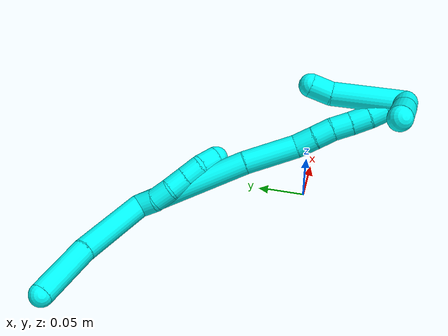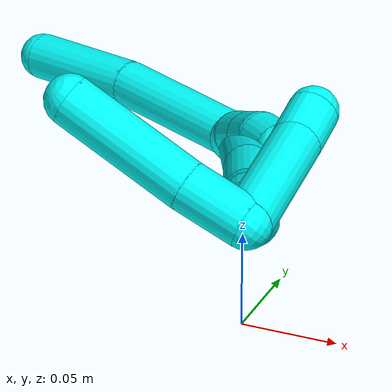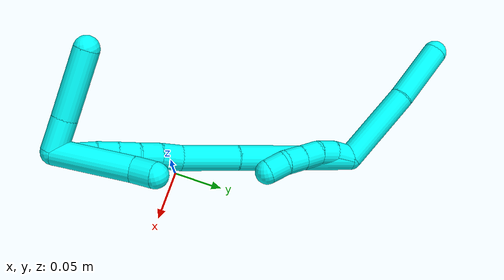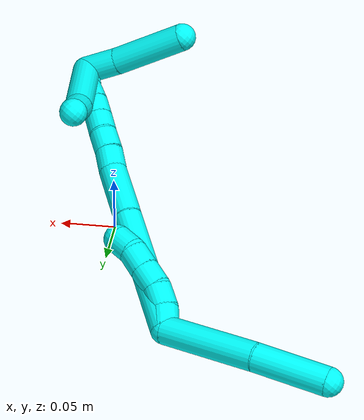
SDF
<sdf version="1.7">
 <world name="default">
  <model name="photoneo_s_sensor">
   <static>1</static>
   <pose>0 0 2 1.57079 1.57079 3.14159</pose>
   <link name="link">
    <inertial><mass>0.1</mass></inertial>
    <sensor name="sensor" type="depth">
     <update_rate>30</update_rate>
     <camera>
      <horizontal_fov>1.22</horizontal_fov>
      <image><width>1920</width><height>1200</height><format>B8G8R8</format></image>
      <clip><near>0.1</near><far>4</far></clip>
      <depth_camera><output>points</output></depth_camera>
     </camera>
     <plugin name="camera_plugin" filename="libgazebo_ros_depth_camera.so">
      <baseline>0.2</baseline>
      <alwaysOn>1</alwaysOn>
      <updateRate>0.0</updateRate>
      <cameraName>camera_ir</cameraName>
      <imageTopicName>/camera/color/image_raw</imageTopicName>
      <cameraInfoTopicName>/camera/color/camera_info</cameraInfoTopicName>
      <depthImageTopicName>/camera/depth/image_raw</depthImageTopicName>
      <depthImageCameraInfoTopicName>/camera/depth/camera_info</depthImageCameraInfoTopicName>
      <pointCloudTopicName>/camera/depth/points</pointCloudTopicName>
      <frameName>fr_optical</frameName>
      <pointCloudCutoff>0.1</pointCloudCutoff>
      <pointCloudCutoffMax>2.0</pointCloudCutoffMax>
      <distortionK1>0</distortionK1>
      <distortionK2>0</distortionK2>
      <distortionK3>0</distortionK3>
      <distortionT1>0</distortionT1>
      <distortionT2>0</distortionT2>
      <CxPrime>0</CxPrime>
      <Cx>0</Cx>
      <Cy>0</Cy>
      <focalLength>0</focalLength>
      <hackBaseline>0</hackBaseline>
     </plugin>
    </sensor>
   </link>
  </model>
  <model name="bin">
   <static>1</static>
   <link name="bottom">
    <collision name="collision-bottom">
     <pose>0 0 -0.01 0 -0 0</pose>
     <geometry><box><size>0.8 0.6 0.02</size></box></geometry>
     <surface>
      <friction><ode><mu>100</mu><mu2>100</mu2></ode></friction>
      <contact><collide_bitmask>65535</collide_bitmask></contact>
     </surface>
    </collision>
   </link>
   <link name="west_wall">
    <collision name="collision-west_wall">
     <pose>-0.41 0 0.1 0 -0 0</pose>
     <geometry><box><size>0.02 0.6 0.2</size></box></geometry>
     <surface>
      <friction><ode><mu>100</mu><mu2>100</mu2></ode></friction>
      <contact><collide_bitmask>65535</collide_bitmask></contact>
     </surface>
    </collision>
   </link>
   <link name="east_wall">
    <collision name="collision-east_wall">
     <pose>0.41 0 0.1 0 -0 0</pose>
     <geometry><box><size>0.02 0.6 0.2</size></box></geometry>
     <surface>
      <friction><ode><mu>100</mu><mu2>100</mu2></ode></friction>
      <contact><collide_bitmask>65535</collide_bitmask></contact>
     </surface>
    </collision>
   </link>
   <link name="south_wall">
    <collision name="collision-south_wall">
     <pose>0 -0.31 0.1 0 -0 0</pose>
     <geometry><box><size>0.8 0.02 0.2</size></box></geometry>
     <surface>
      <friction><ode><mu>100</mu><mu2>100</mu2></ode></friction>
      <contact><collide_bitmask>65535</collide_bitmask></contact>
     </surface>
    </collision>
   </link>
   <link name="north_wall">
    <collision name="collision-north_wall">
     <pose>0 0.31 0.1 0 -0 0</pose>
     <geometry><box><size>0.8 0.02 0.2</size></box></geometry>
     <surface>
      <friction><ode><mu>100</mu><mu2>100</mu2></ode></friction>
      <contact><collide_bitmask>65535</collide_bitmask></contact>
     </surface>
    </collision>
   </link>
  </model>
  <model name="3">
   <static>0</static>
   <link name="3">
    <collision name="collision-cylinder-e_1_2_8">
     <pose>-0.017783 0.034406 0.018047 -1.08771 -0.429241 0.262103</pose>
     <geometry><cylinder><radius>0.0125</radius><length>0.085457</length></cylinder></geometry>
     <surface>
      <friction><ode><mu>1.16</mu><mu2>1.16</mu2><slip1>0</slip1><slip2>0</slip2></ode></friction>
      <contact><ode><kp>1e+06</kp><kd>1</kd><max_vel>0</max_vel><min_depth>0.001</min_depth></ode></contact>
     </surface>
    </collision>
    <visual name="visual-cylinder-e_1_2_8">
     <pose>-0.017783 0.034406 0.018047 -1.08771 -0.429241 0.262103</pose>
     <geometry><cylinder><radius>0.0125</radius><length>0.085457</length></cylinder></geometry>
     <material><ambient>0.003922 1 0.996078 1</ambient></material>
    </visual>
    <collision name="collision-cylinder-e_2_8_6">
     <pose>-0.052398 0.093149 0.048973 -1.08408 -0.548704 0.335791</pose>
     <geometry><cylinder><radius>0.0125</radius><length>0.064543</length></cylinder></geometry>
     <surface>
      <friction><ode><mu>1.16</mu><mu2>1.16</mu2><slip1>0</slip1><slip2>0</slip2></ode></friction>
      <contact><ode><kp>1e+06</kp><kd>1</kd><max_vel>0</max_vel><min_depth>0.001</min_depth></ode></contact>
     </surface>
    </collision>
    <visual name="visual-cylinder-e_2_8_6">
     <pose>-0.052398 0.093149 0.048973 -1.08408 -0.548704 0.335791</pose>
     <geometry><cylinder><radius>0.0125</radius><length>0.064543</length></cylinder></geometry>
     <material><ambient>0.003922 1 0.996078 1</ambient></material>
    </visual>
    <collision name="collision-cylinder-e_1_2_9">
     <pose>0.001567 -0.008011 0.005777 0.946041 0.157331 0.08064</pose>
     <geometry><cylinder><radius>0.0125</radius><length>0.02</length></cylinder></geometry>
     <surface>
      <friction><ode><mu>1.16</mu><mu2>1.16</mu2><slip1>0</slip1><slip2>0</slip2></ode></friction>
      <contact><ode><kp>1e+06</kp><kd>1</kd><max_vel>0</max_vel><min_depth>0.001</min_depth></ode></contact>
     </surface>
    </collision>
    <visual name="visual-cylinder-e_1_2_9">
     <pose>0.001567 -0.008011 0.005777 0.946041 0.157331 0.08064</pose>
     <geometry><cylinder><radius>0.0125</radius><length>0.02</length></cylinder></geometry>
     <material><ambient>0.003922 1 0.996078 1</ambient></material>
    </visual>
    <collision name="collision-cylinder-e_2_9_10">
     <pose>0.007246 -0.024081 0.015813 1.08459 0.423768 0.257798</pose>
     <geometry><cylinder><radius>0.0125</radius><length>0.02</length></cylinder></geometry>
     <surface>
      <friction><ode><mu>1.16</mu><mu2>1.16</mu2><slip1>0</slip1><slip2>0</slip2></ode></friction>
      <contact><ode><kp>1e+06</kp><kd>1</kd><max_vel>0</max_vel><min_depth>0.001</min_depth></ode></contact>
     </surface>
    </collision>
    <visual name="visual-cylinder-e_2_9_10">
     <pose>0.007246 -0.024081 0.015813 1.08459 0.423768 0.257798</pose>
     <geometry><cylinder><radius>0.0125</radius><length>0.02</length></cylinder></geometry>
     <material><ambient>0.003922 1 0.996078 1</ambient></material>
    </visual>
    <collision name="collision-cylinder-e_3_10_11">
     <pose>0.016045 -0.040756 0.022019 1.34856 0.48787 0.392724</pose>
     <geometry><cylinder><radius>0.0125</radius><length>0.02</length></cylinder></geometry>
     <surface>
      <friction><ode><mu>1.16</mu><mu2>1.16</mu2><slip1>0</slip1><slip2>0</slip2></ode></friction>
      <contact><ode><kp>1e+06</kp><kd>1</kd><max_vel>0</max_vel><min_depth>0.001</min_depth></ode></contact>
     </surface>
    </collision>
    <visual name="visual-cylinder-e_3_10_11">
     <pose>0.016045 -0.040756 0.022019 1.34856 0.48787 0.392724</pose>
     <geometry><cylinder><radius>0.0125</radius><length>0.02</length></cylinder></geometry>
     <material><ambient>0.003922 1 0.996078 1</ambient></material>
    </visual>
    <collision name="collision-cylinder-e_4_11_12">
     <pose>0.025417 -0.05796 0.026042 1.33365 0.487587 0.386678</pose>
     <geometry><cylinder><radius>0.0125</radius><length>0.02</length></cylinder></geometry>
     <surface>
      <friction><ode><mu>1.16</mu><mu2>1.16</mu2><slip1>0</slip1><slip2>0</slip2></ode></friction>
      <contact><ode><kp>1e+06</kp><kd>1</kd><max_vel>0</max_vel><min_depth>0.001</min_depth></ode></contact>
     </surface>
    </collision>
    <visual name="visual-cylinder-e_4_11_12">
     <pose>0.025417 -0.05796 0.026042 1.33365 0.487587 0.386678</pose>
     <geometry><cylinder><radius>0.0125</radius><length>0.02</length></cylinder></geometry>
     <material><ambient>0.003922 1 0.996078 1</ambient></material>
    </visual>
    <collision name="collision-cylinder-e_5_12_5">
     <pose>0.03338 -0.075958 0.02729 1.65844 0.333976 0.363963</pose>
     <geometry><cylinder><radius>0.0125</radius><length>0.02</length></cylinder></geometry>
     <surface>
      <friction><ode><mu>1.16</mu><mu2>1.16</mu2><slip1>0</slip1><slip2>0</slip2></ode></friction>
      <contact><ode><kp>1e+06</kp><kd>1</kd><max_vel>0</max_vel><min_depth>0.001</min_depth></ode></contact>
     </surface>
    </collision>
    <visual name="visual-cylinder-e_5_12_5">
     <pose>0.03338 -0.075958 0.02729 1.65844 0.333976 0.363963</pose>
     <geometry><cylinder><radius>0.0125</radius><length>0.02</length></cylinder></geometry>
     <material><ambient>0.003922 1 0.996078 1</ambient></material>
    </visual>
    <collision name="collision-cylinder-e_1_2_13">
     <pose>0.012967 -0.055314 0.02168 1.19726 0.214893 0.146887</pose>
     <geometry><cylinder><radius>0.0125</radius><length>0.121619</length></cylinder></geometry>
     <surface>
      <friction><ode><mu>1.16</mu><mu2>1.16</mu2><slip1>0</slip1><slip2>0</slip2></ode></friction>
      <contact><ode><kp>1e+06</kp><kd>1</kd><max_vel>0</max_vel><min_depth>0.001</min_depth></ode></contact>
     </surface>
    </collision>
    <visual name="visual-cylinder-e_1_2_13">
     <pose>0.012967 -0.055314 0.02168 1.19726 0.214893 0.146887</pose>
     <geometry><cylinder><radius>0.0125</radius><length>0.121619</length></cylinder></geometry>
     <material><ambient>0.003922 1 0.996078 1</ambient></material>
    </visual>
    <collision name="collision-cylinder-e_2_13_14">
     <pose>0.029763 -0.137119 0.052564 1.23638 0.135686 0.096571</pose>
     <geometry><cylinder><radius>0.0125</radius><length>0.056608</length></cylinder></geometry>
     <surface>
      <friction><ode><mu>1.16</mu><mu2>1.16</mu2><slip1>0</slip1><slip2>0</slip2></ode></friction>
      <contact><ode><kp>1e+06</kp><kd>1</kd><max_vel>0</max_vel><min_depth>0.001</min_depth></ode></contact>
     </surface>
    </collision>
    <visual name="visual-cylinder-e_2_13_14">
     <pose>0.029763 -0.137119 0.052564 1.23638 0.135686 0.096571</pose>
     <geometry><cylinder><radius>0.0125</radius><length>0.056608</length></cylinder></geometry>
     <material><ambient>0.003922 1 0.996078 1</ambient></material>
    </visual>
    <collision name="collision-cylinder-e_3_14_15">
     <pose>0.03623 -0.17266 0.066798 1.06355 0.249481 0.147269</pose>
     <geometry><cylinder><radius>0.0125</radius><length>0.021372</length></cylinder></geometry>
     <surface>
      <friction><ode><mu>1.16</mu><mu2>1.16</mu2><slip1>0</slip1><slip2>0</slip2></ode></friction>
      <contact><ode><kp>1e+06</kp><kd>1</kd><max_vel>0</max_vel><min_depth>0.001</min_depth></ode></contact>
     </surface>
    </collision>
    <visual name="visual-cylinder-e_3_14_15">
     <pose>0.03623 -0.17266 0.066798 1.06355 0.249481 0.147269</pose>
     <geometry><cylinder><radius>0.0125</radius><length>0.021372</length></cylinder></geometry>
     <material><ambient>0.003922 1 0.996078 1</ambient></material>
    </visual>
    <collision name="collision-cylinder-e_4_15_16">
     <pose>0.041602 -0.190712 0.075768 1.15817 0.271369 0.178063</pose>
     <geometry><cylinder><radius>0.0125</radius><length>0.020396</length></cylinder></geometry>
     <surface>
      <friction><ode><mu>1.16</mu><mu2>1.16</mu2><slip1>0</slip1><slip2>0</slip2></ode></friction>
      <contact><ode><kp>1e+06</kp><kd>1</kd><max_vel>0</max_vel><min_depth>0.001</min_depth></ode></contact>
     </surface>
    </collision>
    <visual name="visual-cylinder-e_4_15_16">
     <pose>0.041602 -0.190712 0.075768 1.15817 0.271369 0.178063</pose>
     <geometry><cylinder><radius>0.0125</radius><length>0.020396</length></cylinder></geometry>
     <material><ambient>0.003922 1 0.996078 1</ambient></material>
    </visual>
    <collision name="collision-cylinder-e_5_16_17">
     <pose>0.045609 -0.208977 0.083254 1.2053 0.127655 0.087894</pose>
     <geometry><cylinder><radius>0.0125</radius><length>0.020003</length></cylinder></geometry>
     <surface>
      <friction><ode><mu>1.16</mu><mu2>1.16</mu2><slip1>0</slip1><slip2>0</slip2></ode></friction>
      <contact><ode><kp>1e+06</kp><kd>1</kd><max_vel>0</max_vel><min_depth>0.001</min_depth></ode></contact>
     </surface>
    </collision>
    <visual name="visual-cylinder-e_5_16_17">
     <pose>0.045609 -0.208977 0.083254 1.2053 0.127655 0.087894</pose>
     <geometry><cylinder><radius>0.0125</radius><length>0.020003</length></cylinder></geometry>
     <material><ambient>0.003922 1 0.996078 1</ambient></material>
    </visual>
    <collision name="collision-cylinder-e_6_17_18">
     <pose>0.048553 -0.227422 0.090398 1.19718 0.167872 0.114644</pose>
     <geometry><cylinder><radius>0.0125</radius><length>0.020001</length></cylinder></geometry>
     <surface>
      <friction><ode><mu>1.16</mu><mu2>1.16</mu2><slip1>0</slip1><slip2>0</slip2></ode></friction>
      <contact><ode><kp>1e+06</kp><kd>1</kd><max_vel>0</max_vel><min_depth>0.001</min_depth></ode></contact>
     </surface>
    </collision>
    <visual name="visual-cylinder-e_6_17_18">
     <pose>0.048553 -0.227422 0.090398 1.19718 0.167872 0.114644</pose>
     <geometry><cylinder><radius>0.0125</radius><length>0.020001</length></cylinder></geometry>
     <material><ambient>0.003922 1 0.996078 1</ambient></material>
    </visual>
    <collision name="collision-cylinder-e_7_18_19">
     <pose>0.052743 -0.245803 0.096996 1.25576 0.254601 0.185281</pose>
     <geometry><cylinder><radius>0.0125</radius><length>0.02</length></cylinder></geometry>
     <surface>
      <friction><ode><mu>1.16</mu><mu2>1.16</mu2><slip1>0</slip1><slip2>0</slip2></ode></friction>
      <contact><ode><kp>1e+06</kp><kd>1</kd><max_vel>0</max_vel><min_depth>0.001</min_depth></ode></contact>
     </surface>
    </collision>
    <visual name="visual-cylinder-e_7_18_19">
     <pose>0.052743 -0.245803 0.096996 1.25576 0.254601 0.185281</pose>
     <geometry><cylinder><radius>0.0125</radius><length>0.02</length></cylinder></geometry>
     <material><ambient>0.003922 1 0.996078 1</ambient></material>
    </visual>
    <collision name="collision-cylinder-e_8_19_1">
     <pose>0.056571 -0.263394 0.105277 1.00883 0.131315 0.072565</pose>
     <geometry><cylinder><radius>0.0125</radius><length>0.020001</length></cylinder></geometry>
     <surface>
      <friction><ode><mu>1.16</mu><mu2>1.16</mu2><slip1>0</slip1><slip2>0</slip2></ode></friction>
      <contact><ode><kp>1e+06</kp><kd>1</kd><max_vel>0</max_vel><min_depth>0.001</min_depth></ode></contact>
     </surface>
    </collision>
    <visual name="visual-cylinder-e_8_19_1">
     <pose>0.056571 -0.263394 0.105277 1.00883 0.131315 0.072565</pose>
     <geometry><cylinder><radius>0.0125</radius><length>0.020001</length></cylinder></geometry>
     <material><ambient>0.003922 1 0.996078 1</ambient></material>
    </visual>
    <collision name="collision-cylinder-e_1_1_20">
     <pose>0.053466 -0.263006 0.123513 -0.595497 -0.274968 0.084864</pose>
     <geometry><cylinder><radius>0.0125</radius><length>0.032515</length></cylinder></geometry>
     <surface>
      <friction><ode><mu>1.16</mu><mu2>1.16</mu2><slip1>0</slip1><slip2>0</slip2></ode></friction>
      <contact><ode><kp>1e+06</kp><kd>1</kd><max_vel>0</max_vel><min_depth>0.001</min_depth></ode></contact>
     </surface>
    </collision>
    <visual name="visual-cylinder-e_1_1_20">
     <pose>0.053466 -0.263006 0.123513 -0.595497 -0.274968 0.084864</pose>
     <geometry><cylinder><radius>0.0125</radius><length>0.032515</length></cylinder></geometry>
     <material><ambient>0.003922 1 0.996078 1</ambient></material>
    </visual>
    <collision name="collision-cylinder-e_2_20_4">
     <pose>0.042451 -0.236 0.164083 -0.583462 -0.196896 0.059302</pose>
     <geometry><cylinder><radius>0.0125</radius><length>0.067485</length></cylinder></geometry>
     <surface>
      <friction><ode><mu>1.16</mu><mu2>1.16</mu2><slip1>0</slip1><slip2>0</slip2></ode></friction>
      <contact><ode><kp>1e+06</kp><kd>1</kd><max_vel>0</max_vel><min_depth>0.001</min_depth></ode></contact>
     </surface>
    </collision>
    <visual name="visual-cylinder-e_2_20_4">
     <pose>0.042451 -0.236 0.164083 -0.583462 -0.196896 0.059302</pose>
     <geometry><cylinder><radius>0.0125</radius><length>0.067485</length></cylinder></geometry>
     <material><ambient>0.003922 1 0.996078 1</ambient></material>
    </visual>
    <collision name="collision-cylinder-e_1_1_21">
     <pose>0.069353 -0.237261 0.097793 -1.92501 0.302156 -0.430457</pose>
     <geometry><cylinder><radius>0.0125</radius><length>0.077106</length></cylinder></geometry>
     <surface>
      <friction><ode><mu>1.16</mu><mu2>1.16</mu2><slip1>0</slip1><slip2>0</slip2></ode></friction>
      <contact><ode><kp>1e+06</kp><kd>1</kd><max_vel>0</max_vel><min_depth>0.001</min_depth></ode></contact>
     </surface>
    </collision>
    <visual name="visual-cylinder-e_1_1_21">
     <pose>0.069353 -0.237261 0.097793 -1.92501 0.302156 -0.430457</pose>
     <geometry><cylinder><radius>0.0125</radius><length>0.077106</length></cylinder></geometry>
     <material><ambient>0.003922 1 0.996078 1</ambient></material>
    </visual>
    <collision name="collision-cylinder-e_2_21_3">
     <pose>0.086849 -0.193297 0.082666 -1.8158 0.55414 -0.698612</pose>
     <geometry><cylinder><radius>0.0125</radius><length>0.022894</length></cylinder></geometry>
     <surface>
      <friction><ode><mu>1.16</mu><mu2>1.16</mu2><slip1>0</slip1><slip2>0</slip2></ode></friction>
      <contact><ode><kp>1e+06</kp><kd>1</kd><max_vel>0</max_vel><min_depth>0.001</min_depth></ode></contact>
     </surface>
    </collision>
    <visual name="visual-cylinder-e_2_21_3">
     <pose>0.086849 -0.193297 0.082666 -1.8158 0.55414 -0.698612</pose>
     <geometry><cylinder><radius>0.0125</radius><length>0.022894</length></cylinder></geometry>
     <material><ambient>0.003922 1 0.996078 1</ambient></material>
    </visual>
    <collision name="collision-sphere-3">
     <pose>0.092872 -0.183853 0.080304 0 -0 0</pose>
     <geometry><sphere><radius>0.0125</radius></sphere></geometry>
     <surface>
      <friction><ode><mu>1.16</mu><mu2>1.16</mu2><slip1>0</slip1><slip2>0</slip2></ode></friction>
      <contact><ode><kp>1e+06</kp><kd>1</kd><max_vel>0</max_vel><min_depth>0.001</min_depth></ode></contact>
     </surface>
    </collision>
    <visual name="visual-sphere-3">
     <pose>0.092872 -0.183853 0.080304 0 -0 0</pose>
     <geometry><sphere><radius>0.0125</radius></sphere></geometry>
     <material><ambient>0.003922 1 0.996078 1</ambient></material>
    </visual>
    <collision name="collision-sphere-21">
     <pose>0.080826 -0.20274 0.085027 0 -0 0</pose>
     <geometry><sphere><radius>0.0125</radius></sphere></geometry>
     <surface>
      <friction><ode><mu>1.16</mu><mu2>1.16</mu2><slip1>0</slip1><slip2>0</slip2></ode></friction>
      <contact><ode><kp>1e+06</kp><kd>1</kd><max_vel>0</max_vel><min_depth>0.001</min_depth></ode></contact>
     </surface>
    </collision>
    <visual name="visual-sphere-21">
     <pose>0.080826 -0.20274 0.085027 0 -0 0</pose>
     <geometry><sphere><radius>0.0125</radius></sphere></geometry>
     <material><ambient>0.003922 1 0.996078 1</ambient></material>
    </visual>
    <collision name="collision-sphere-4">
     <pose>0.03585 -0.21777 0.191699 0 -0 0</pose>
     <geometry><sphere><radius>0.0125</radius></sphere></geometry>
     <surface>
      <friction><ode><mu>1.16</mu><mu2>1.16</mu2><slip1>0</slip1><slip2>0</slip2></ode></friction>
      <contact><ode><kp>1e+06</kp><kd>1</kd><max_vel>0</max_vel><min_depth>0.001</min_depth></ode></contact>
     </surface>
    </collision>
    <visual name="visual-sphere-4">
     <pose>0.03585 -0.21777 0.191699 0 -0 0</pose>
     <geometry><sphere><radius>0.0125</radius></sphere></geometry>
     <material><ambient>0.003922 1 0.996078 1</ambient></material>
    </visual>
    <collision name="collision-sphere-20">
     <pose>0.049052 -0.25423 0.136466 0 -0 0</pose>
     <geometry><sphere><radius>0.0125</radius></sphere></geometry>
     <surface>
      <friction><ode><mu>1.16</mu><mu2>1.16</mu2><slip1>0</slip1><slip2>0</slip2></ode></friction>
      <contact><ode><kp>1e+06</kp><kd>1</kd><max_vel>0</max_vel><min_depth>0.001</min_depth></ode></contact>
     </surface>
    </collision>
    <visual name="visual-sphere-20">
     <pose>0.049052 -0.25423 0.136466 0 -0 0</pose>
     <geometry><sphere><radius>0.0125</radius></sphere></geometry>
     <material><ambient>0.003922 1 0.996078 1</ambient></material>
    </visual>
    <collision name="collision-sphere-11">
     <pose>0.020733 -0.049372 0.023966 0 -0 0</pose>
     <geometry><sphere><radius>0.0125</radius></sphere></geometry>
     <surface>
      <friction><ode><mu>1.16</mu><mu2>1.16</mu2><slip1>0</slip1><slip2>0</slip2></ode></friction>
      <contact><ode><kp>1e+06</kp><kd>1</kd><max_vel>0</max_vel><min_depth>0.001</min_depth></ode></contact>
     </surface>
    </collision>
    <visual name="visual-sphere-11">
     <pose>0.020733 -0.049372 0.023966 0 -0 0</pose>
     <geometry><sphere><radius>0.0125</radius></sphere></geometry>
     <material><ambient>0.003922 1 0.996078 1</ambient></material>
    </visual>
    <collision name="collision-sphere-10">
     <pose>0.011358 -0.03214 0.020072 0 -0 0</pose>
     <geometry><sphere><radius>0.0125</radius></sphere></geometry>
     <surface>
      <friction><ode><mu>1.16</mu><mu2>1.16</mu2><slip1>0</slip1><slip2>0</slip2></ode></friction>
      <contact><ode><kp>1e+06</kp><kd>1</kd><max_vel>0</max_vel><min_depth>0.001</min_depth></ode></contact>
     </surface>
    </collision>
    <visual name="visual-sphere-10">
     <pose>0.011358 -0.03214 0.020072 0 -0 0</pose>
     <geometry><sphere><radius>0.0125</radius></sphere></geometry>
     <material><ambient>0.003922 1 0.996078 1</ambient></material>
    </visual>
    <collision name="collision-sphere-6">
     <pose>-0.06923 0.117486 0.061852 0 -0 0</pose>
     <geometry><sphere><radius>0.0125</radius></sphere></geometry>
     <surface>
      <friction><ode><mu>1.16</mu><mu2>1.16</mu2><slip1>0</slip1><slip2>0</slip2></ode></friction>
      <contact><ode><kp>1e+06</kp><kd>1</kd><max_vel>0</max_vel><min_depth>0.001</min_depth></ode></contact>
     </surface>
    </collision>
    <visual name="visual-sphere-6">
     <pose>-0.06923 0.117486 0.061852 0 -0 0</pose>
     <geometry><sphere><radius>0.0125</radius></sphere></geometry>
     <material><ambient>0.003922 1 0.996078 1</ambient></material>
    </visual>
    <collision name="collision-sphere-9">
     <pose>0.003134 -0.016022 0.011553 0 -0 0</pose>
     <geometry><sphere><radius>0.0125</radius></sphere></geometry>
     <surface>
      <friction><ode><mu>1.16</mu><mu2>1.16</mu2><slip1>0</slip1><slip2>0</slip2></ode></friction>
      <contact><ode><kp>1e+06</kp><kd>1</kd><max_vel>0</max_vel><min_depth>0.001</min_depth></ode></contact>
     </surface>
    </collision>
    <visual name="visual-sphere-9">
     <pose>0.003134 -0.016022 0.011553 0 -0 0</pose>
     <geometry><sphere><radius>0.0125</radius></sphere></geometry>
     <material><ambient>0.003922 1 0.996078 1</ambient></material>
    </visual>
    <collision name="collision-sphere-2">
     <geometry><sphere><radius>0.0125</radius></sphere></geometry>
     <surface>
      <friction><ode><mu>1.16</mu><mu2>1.16</mu2><slip1>0</slip1><slip2>0</slip2></ode></friction>
      <contact><ode><kp>1e+06</kp><kd>1</kd><max_vel>0</max_vel><min_depth>0.001</min_depth></ode></contact>
     </surface>
    </collision>
    <visual name="visual-sphere-2">
     <geometry><sphere><radius>0.0125</radius></sphere></geometry>
     <material><ambient>0.003922 1 0.996078 1</ambient></material>
    </visual>
    <collision name="collision-sphere-19">
     <pose>0.055261 -0.255004 0.099994 0 -0 0</pose>
     <geometry><sphere><radius>0.0125</radius></sphere></geometry>
     <surface>
      <friction><ode><mu>1.16</mu><mu2>1.16</mu2><slip1>0</slip1><slip2>0</slip2></ode></friction>
      <contact><ode><kp>1e+06</kp><kd>1</kd><max_vel>0</max_vel><min_depth>0.001</min_depth></ode></contact>
     </surface>
    </collision>
    <visual name="visual-sphere-19">
     <pose>0.055261 -0.255004 0.099994 0 -0 0</pose>
     <geometry><sphere><radius>0.0125</radius></sphere></geometry>
     <material><ambient>0.003922 1 0.996078 1</ambient></material>
    </visual>
    <collision name="collision-sphere-8">
     <pose>-0.035565 0.068812 0.036095 0 -0 0</pose>
     <geometry><sphere><radius>0.0125</radius></sphere></geometry>
     <surface>
      <friction><ode><mu>1.16</mu><mu2>1.16</mu2><slip1>0</slip1><slip2>0</slip2></ode></friction>
      <contact><ode><kp>1e+06</kp><kd>1</kd><max_vel>0</max_vel><min_depth>0.001</min_depth></ode></contact>
     </surface>
    </collision>
    <visual name="visual-sphere-8">
     <pose>-0.035565 0.068812 0.036095 0 -0 0</pose>
     <geometry><sphere><radius>0.0125</radius></sphere></geometry>
     <material><ambient>0.003922 1 0.996078 1</ambient></material>
    </visual>
    <collision name="collision-sphere-12">
     <pose>0.030102 -0.066547 0.028117 0 -0 0</pose>
     <geometry><sphere><radius>0.0125</radius></sphere></geometry>
     <surface>
      <friction><ode><mu>1.16</mu><mu2>1.16</mu2><slip1>0</slip1><slip2>0</slip2></ode></friction>
      <contact><ode><kp>1e+06</kp><kd>1</kd><max_vel>0</max_vel><min_depth>0.001</min_depth></ode></contact>
     </surface>
    </collision>
    <visual name="visual-sphere-12">
     <pose>0.030102 -0.066547 0.028117 0 -0 0</pose>
     <geometry><sphere><radius>0.0125</radius></sphere></geometry>
     <material><ambient>0.003922 1 0.996078 1</ambient></material>
    </visual>
    <collision name="collision-sphere-5">
     <pose>0.036658 -0.085369 0.026463 0 -0 0</pose>
     <geometry><sphere><radius>0.0125</radius></sphere></geometry>
     <surface>
      <friction><ode><mu>1.16</mu><mu2>1.16</mu2><slip1>0</slip1><slip2>0</slip2></ode></friction>
      <contact><ode><kp>1e+06</kp><kd>1</kd><max_vel>0</max_vel><min_depth>0.001</min_depth></ode></contact>
     </surface>
    </collision>
    <visual name="visual-sphere-5">
     <pose>0.036658 -0.085369 0.026463 0 -0 0</pose>
     <geometry><sphere><radius>0.0125</radius></sphere></geometry>
     <material><ambient>0.003922 1 0.996078 1</ambient></material>
    </visual>
    <collision name="collision-sphere-13">
     <pose>0.025934 -0.110628 0.043359 0 -0 0</pose>
     <geometry><sphere><radius>0.0125</radius></sphere></geometry>
     <surface>
      <friction><ode><mu>1.16</mu><mu2>1.16</mu2><slip1>0</slip1><slip2>0</slip2></ode></friction>
      <contact><ode><kp>1e+06</kp><kd>1</kd><max_vel>0</max_vel><min_depth>0.001</min_depth></ode></contact>
     </surface>
    </collision>
    <visual name="visual-sphere-13">
     <pose>0.025934 -0.110628 0.043359 0 -0 0</pose>
     <geometry><sphere><radius>0.0125</radius></sphere></geometry>
     <material><ambient>0.003922 1 0.996078 1</ambient></material>
    </visual>
    <collision name="collision-sphere-14">
     <pose>0.033592 -0.163609 0.061768 0 -0 0</pose>
     <geometry><sphere><radius>0.0125</radius></sphere></geometry>
     <surface>
      <friction><ode><mu>1.16</mu><mu2>1.16</mu2><slip1>0</slip1><slip2>0</slip2></ode></friction>
      <contact><ode><kp>1e+06</kp><kd>1</kd><max_vel>0</max_vel><min_depth>0.001</min_depth></ode></contact>
     </surface>
    </collision>
    <visual name="visual-sphere-14">
     <pose>0.033592 -0.163609 0.061768 0 -0 0</pose>
     <geometry><sphere><radius>0.0125</radius></sphere></geometry>
     <material><ambient>0.003922 1 0.996078 1</ambient></material>
    </visual>
    <collision name="collision-sphere-15">
     <pose>0.038869 -0.181711 0.071828 0 -0 0</pose>
     <geometry><sphere><radius>0.0125</radius></sphere></geometry>
     <surface>
      <friction><ode><mu>1.16</mu><mu2>1.16</mu2><slip1>0</slip1><slip2>0</slip2></ode></friction>
      <contact><ode><kp>1e+06</kp><kd>1</kd><max_vel>0</max_vel><min_depth>0.001</min_depth></ode></contact>
     </surface>
    </collision>
    <visual name="visual-sphere-15">
     <pose>0.038869 -0.181711 0.071828 0 -0 0</pose>
     <geometry><sphere><radius>0.0125</radius></sphere></geometry>
     <material><ambient>0.003922 1 0.996078 1</ambient></material>
    </visual>
    <collision name="collision-sphere-16">
     <pose>0.044336 -0.199712 0.079708 0 -0 0</pose>
     <geometry><sphere><radius>0.0125</radius></sphere></geometry>
     <surface>
      <friction><ode><mu>1.16</mu><mu2>1.16</mu2><slip1>0</slip1><slip2>0</slip2></ode></friction>
      <contact><ode><kp>1e+06</kp><kd>1</kd><max_vel>0</max_vel><min_depth>0.001</min_depth></ode></contact>
     </surface>
    </collision>
    <visual name="visual-sphere-16">
     <pose>0.044336 -0.199712 0.079708 0 -0 0</pose>
     <geometry><sphere><radius>0.0125</radius></sphere></geometry>
     <material><ambient>0.003922 1 0.996078 1</ambient></material>
    </visual>
    <collision name="collision-sphere-17">
     <pose>0.046882 -0.218242 0.0868 0 -0 0</pose>
     <geometry><sphere><radius>0.0125</radius></sphere></geometry>
     <surface>
      <friction><ode><mu>1.16</mu><mu2>1.16</mu2><slip1>0</slip1><slip2>0</slip2></ode></friction>
      <contact><ode><kp>1e+06</kp><kd>1</kd><max_vel>0</max_vel><min_depth>0.001</min_depth></ode></contact>
     </surface>
    </collision>
    <visual name="visual-sphere-17">
     <pose>0.046882 -0.218242 0.0868 0 -0 0</pose>
     <geometry><sphere><radius>0.0125</radius></sphere></geometry>
     <material><ambient>0.003922 1 0.996078 1</ambient></material>
    </visual>
    <collision name="collision-sphere-18">
     <pose>0.050224 -0.236601 0.093997 0 -0 0</pose>
     <geometry><sphere><radius>0.0125</radius></sphere></geometry>
     <surface>
      <friction><ode><mu>1.16</mu><mu2>1.16</mu2><slip1>0</slip1><slip2>0</slip2></ode></friction>
      <contact><ode><kp>1e+06</kp><kd>1</kd><max_vel>0</max_vel><min_depth>0.001</min_depth></ode></contact>
     </surface>
    </collision>
    <visual name="visual-sphere-18">
     <pose>0.050224 -0.236601 0.093997 0 -0 0</pose>
     <geometry><sphere><radius>0.0125</radius></sphere></geometry>
     <material><ambient>0.003922 1 0.996078 1</ambient></material>
    </visual>
    <collision name="collision-sphere-1">
     <pose>0.05788 -0.271783 0.11056 0 -0 0</pose>
     <geometry><sphere><radius>0.0125</radius></sphere></geometry>
     <surface>
      <friction><ode><mu>1.16</mu><mu2>1.16</mu2><slip1>0</slip1><slip2>0</slip2></ode></friction>
      <contact><ode><kp>1e+06</kp><kd>1</kd><max_vel>0</max_vel><min_depth>0.001</min_depth></ode></contact>
     </surface>
    </collision>
    <visual name="visual-sphere-1">
     <pose>0.05788 -0.271783 0.11056 0 -0 0</pose>
     <geometry><sphere><radius>0.0125</radius></sphere></geometry>
     <material><ambient>0.003922 1 0.996078 1</ambient></material>
    </visual>
    <inertial>
     <pose>0.023553 -0.11115 0.063024 0 -0 0</pose>
     <mass>0.75</mass>
     <inertia>
      <ixx>0.000353</ixx>
      <ixy>0</ixy>
      <ixz>0</ixz>
      <iyy>0.000161</iyy>
      <iyz>0</iyz>
      <izz>6.1e-05</izz>
     </inertia>
    </inertial>
   </link>
   <pose>-0.070501 0.166051 0.011344 0.102265 -0.818394 0.476503</pose>
  </model>
 </world>
</sdf>
